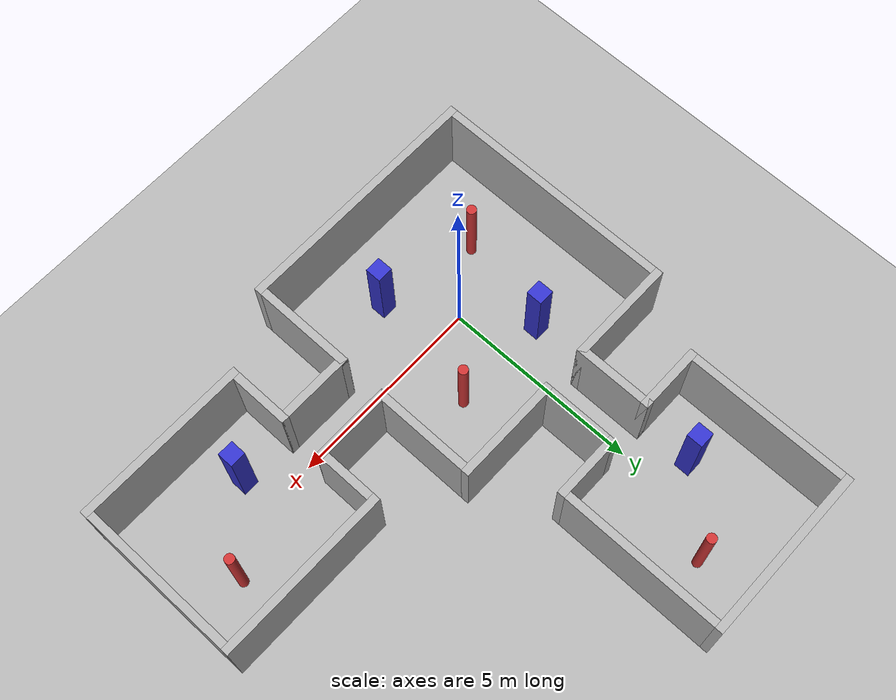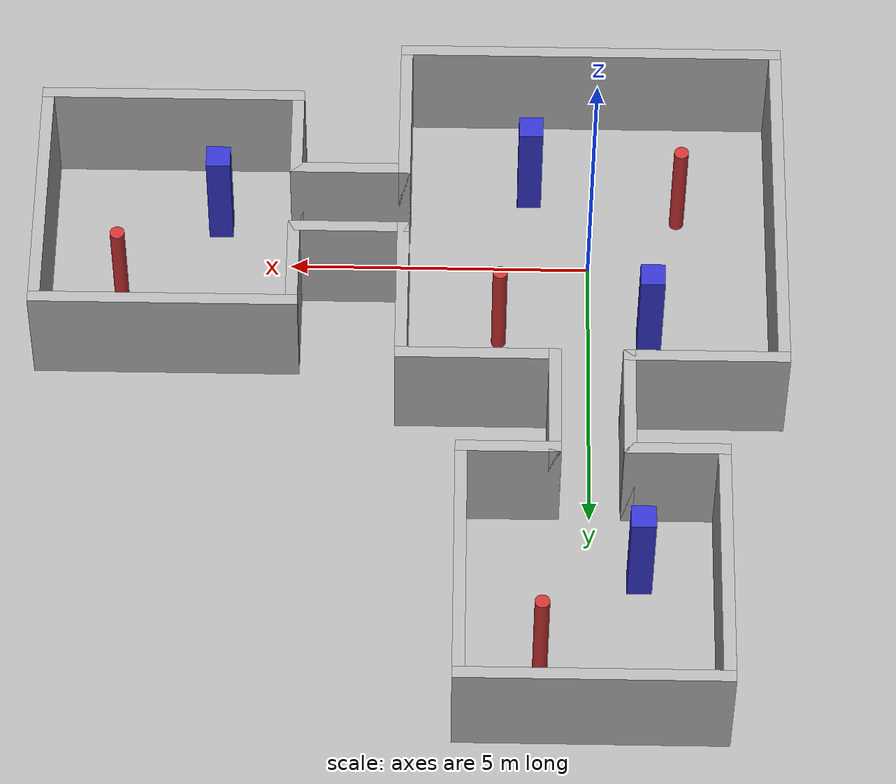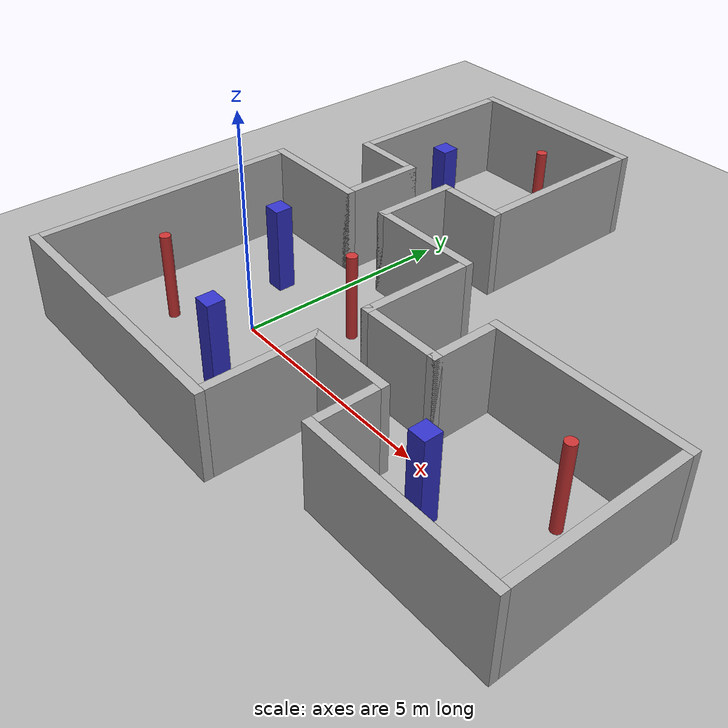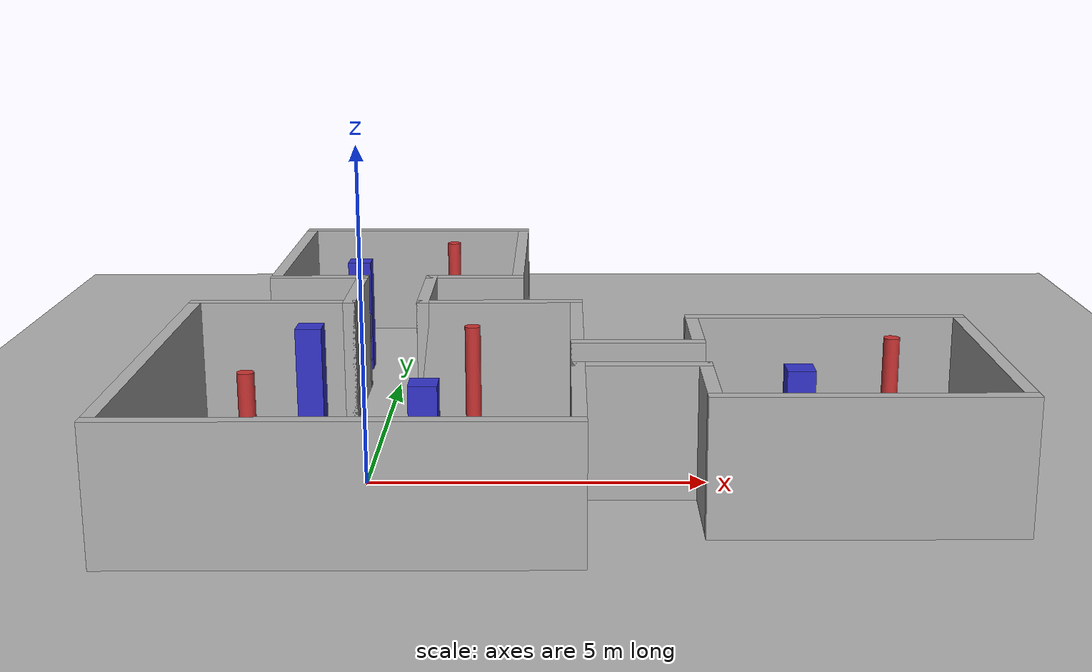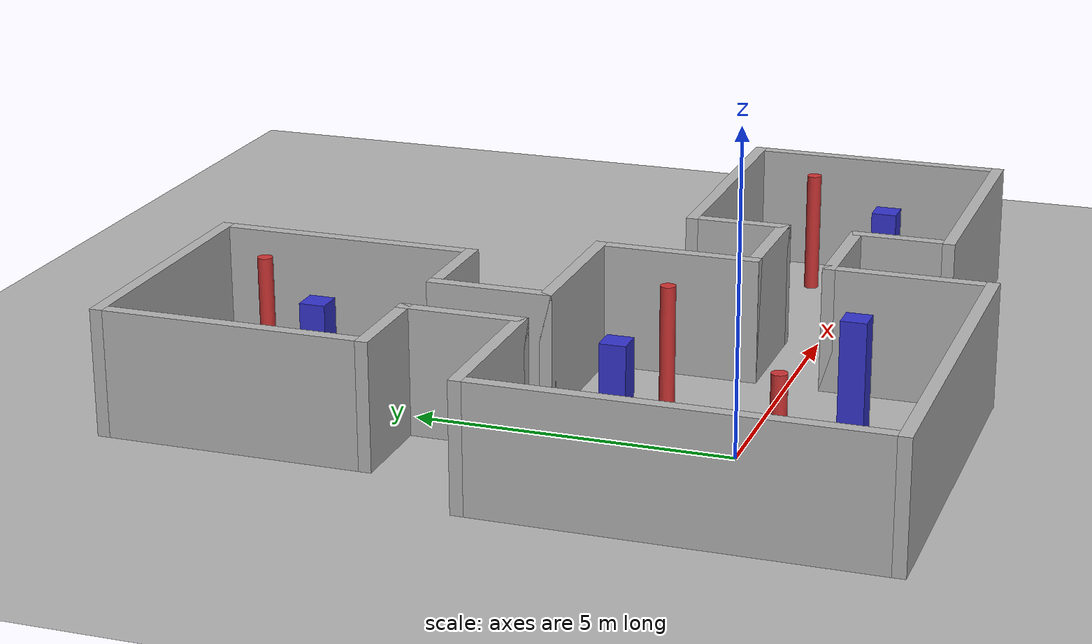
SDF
<?xml version="1.0" ?>
<!-- Copyright (c) 2026 Peppermint Robotics. All rights reserved. -->
<sdf version="1.8">
  <world name="multi_room">

    <!-- ==================== Physics ==================== -->
    <physics name="default_physics" type="ode">
      <max_step_size>0.001</max_step_size>
      <real_time_factor>1.0</real_time_factor>
      <real_time_update_rate>1000</real_time_update_rate>
    </physics>

    <!-- ==================== Required system plugins ==================== -->
    <plugin filename="ignition-gazebo-physics-system"
            name="ignition::gazebo::systems::Physics"/>
    <plugin filename="ignition-gazebo-user-commands-system"
            name="ignition::gazebo::systems::UserCommands"/>
    <plugin filename="ignition-gazebo-scene-broadcaster-system"
            name="ignition::gazebo::systems::SceneBroadcaster"/>
    <plugin filename="ignition-gazebo-sensors-system"
            name="ignition::gazebo::systems::Sensors">
      <render_engine>ogre2</render_engine>
    </plugin>

    <!-- ==================== Lighting ==================== -->
    <light name="sun" type="directional">
      <cast_shadows>true</cast_shadows>
      <pose>0 0 10 0 0 0</pose>
      <diffuse>0.8 0.8 0.8 1</diffuse>
      <specular>0.2 0.2 0.2 1</specular>
      <attenuation>
        <range>1000</range>
        <constant>0.9</constant>
        <linear>0.01</linear>
        <quadratic>0.001</quadratic>
      </attenuation>
      <direction>-0.5 0.1 -0.9</direction>
    </light>

    <!-- ==================== Ground plane ==================== -->
    <model name="ground_plane">
      <static>true</static>
      <link name="link">
        <collision name="collision">
          <geometry>
            <plane><normal>0 0 1</normal><size>25 25</size></plane>
          </geometry>
          <surface>
            <friction><ode><mu>1.0</mu><mu2>1.0</mu2></ode></friction>
          </surface>
        </collision>
        <visual name="visual">
          <geometry>
            <plane><normal>0 0 1</normal><size>25 25</size></plane>
          </geometry>
          <material>
            <ambient>0.7 0.7 0.7 1</ambient>
            <diffuse>0.7 0.7 0.7 1</diffuse>
            <specular>0.1 0.1 0.1 1</specular>
          </material>
        </visual>
      </link>
    </model>

    <model name="wall_main_south">
      <static>true</static><pose>0 -3.1 1.0 0 0 0</pose>
      <link name="link">
        <collision name="collision"><geometry><box><size>6.4 0.2 2.0</size></box></geometry></collision>
        <visual name="visual">
          <geometry><box><size>6.4 0.2 2.0</size></box></geometry>
          <material><ambient>0.7 0.7 0.7 1</ambient><diffuse>0.7 0.7 0.7 1</diffuse><specular>0.1 0.1 0.1 1</specular></material>
        </visual>
      </link>
    </model>

    <!-- N wall — left of hallway opening: x from -3.2 to -0.5  len=2.7  cx=-1.85 -->
    <model name="wall_main_north_left">
      <static>true</static><pose>-1.85 3.1 1.0 0 0 0</pose>
      <link name="link">
        <collision name="collision"><geometry><box><size>2.7 0.2 2.0</size></box></geometry></collision>
        <visual name="visual">
          <geometry><box><size>2.7 0.2 2.0</size></box></geometry>
          <material><ambient>0.7 0.7 0.7 1</ambient><diffuse>0.7 0.7 0.7 1</diffuse><specular>0.1 0.1 0.1 1</specular></material>
        </visual>
      </link>
    </model>

    <!-- N wall — right of hallway opening: x from 0.5 to 3.2  len=2.7  cx=1.85 -->
    <model name="wall_main_north_right">
      <static>true</static><pose>1.85 3.1 1.0 0 0 0</pose>
      <link name="link">
        <collision name="collision"><geometry><box><size>2.7 0.2 2.0</size></box></geometry></collision>
        <visual name="visual">
          <geometry><box><size>2.7 0.2 2.0</size></box></geometry>
          <material><ambient>0.7 0.7 0.7 1</ambient><diffuse>0.7 0.7 0.7 1</diffuse><specular>0.1 0.1 0.1 1</specular></material>
        </visual>
      </link>
    </model>

    <model name="wall_main_west">
      <static>true</static><pose>-3.1 0 1.0 0 0 0</pose>
      <link name="link">
        <collision name="collision"><geometry><box><size>0.2 6.0 2.0</size></box></geometry></collision>
        <visual name="visual">
          <geometry><box><size>0.2 6.0 2.0</size></box></geometry>
          <material><ambient>0.7 0.7 0.7 1</ambient><diffuse>0.7 0.7 0.7 1</diffuse><specular>0.1 0.1 0.1 1</specular></material>
        </visual>
      </link>
    </model>

    <!-- E wall — south of hallway opening: y from -3.0 to -0.5  len=2.5  cy=-1.75 -->
    <model name="wall_main_east_south">
      <static>true</static><pose>3.1 -1.75 1.0 0 0 0</pose>
      <link name="link">
        <collision name="collision"><geometry><box><size>0.2 2.5 2.0</size></box></geometry></collision>
        <visual name="visual">
          <geometry><box><size>0.2 2.5 2.0</size></box></geometry>
          <material><ambient>0.7 0.7 0.7 1</ambient><diffuse>0.7 0.7 0.7 1</diffuse><specular>0.1 0.1 0.1 1</specular></material>
        </visual>
      </link>
    </model>

    <!-- E wall — north of hallway opening: y from 0.5 to 3.0  len=2.5  cy=1.75 -->
    <model name="wall_main_east_north">
      <static>true</static><pose>3.1 1.75 1.0 0 0 0</pose>
      <link name="link">
        <collision name="collision"><geometry><box><size>0.2 2.5 2.0</size></box></geometry></collision>
        <visual name="visual">
          <geometry><box><size>0.2 2.5 2.0</size></box></geometry>
          <material><ambient>0.7 0.7 0.7 1</ambient><diffuse>0.7 0.7 0.7 1</diffuse><specular>0.1 0.1 0.1 1</specular></material>
        </visual>
      </link>
    </model>

    <model name="wall_hallway_north_west">
      <static>true</static><pose>-0.6 4.0 1.0 0 0 0</pose>
      <link name="link">
        <collision name="collision"><geometry><box><size>0.2 2.0 2.0</size></box></geometry></collision>
        <visual name="visual">
          <geometry><box><size>0.2 2.0 2.0</size></box></geometry>
          <material><ambient>0.7 0.7 0.7 1</ambient><diffuse>0.7 0.7 0.7 1</diffuse><specular>0.1 0.1 0.1 1</specular></material>
        </visual>
      </link>
    </model>

    <model name="wall_hallway_north_east">
      <static>true</static><pose>0.6 4.0 1.0 0 0 0</pose>
      <link name="link">
        <collision name="collision"><geometry><box><size>0.2 2.0 2.0</size></box></geometry></collision>
        <visual name="visual">
          <geometry><box><size>0.2 2.0 2.0</size></box></geometry>
          <material><ambient>0.7 0.7 0.7 1</ambient><diffuse>0.7 0.7 0.7 1</diffuse><specular>0.1 0.1 0.1 1</specular></material>
        </visual>
      </link>
    </model>

    <model name="wall_r2_north">
      <static>true</static><pose>0 9.1 1.0 0 0 0</pose>
      <link name="link">
        <collision name="collision"><geometry><box><size>4.4 0.2 2.0</size></box></geometry></collision>
        <visual name="visual">
          <geometry><box><size>4.4 0.2 2.0</size></box></geometry>
          <material><ambient>0.7 0.7 0.7 1</ambient><diffuse>0.7 0.7 0.7 1</diffuse><specular>0.1 0.1 0.1 1</specular></material>
        </visual>
      </link>
    </model>

    <!-- S wall — left of hallway: x from -2.2 to -0.5  len=1.7  cx=-1.35 -->
    <model name="wall_r2_south_left">
      <static>true</static><pose>-1.35 4.9 1.0 0 0 0</pose>
      <link name="link">
        <collision name="collision"><geometry><box><size>1.7 0.2 2.0</size></box></geometry></collision>
        <visual name="visual">
          <geometry><box><size>1.7 0.2 2.0</size></box></geometry>
          <material><ambient>0.7 0.7 0.7 1</ambient><diffuse>0.7 0.7 0.7 1</diffuse><specular>0.1 0.1 0.1 1</specular></material>
        </visual>
      </link>
    </model>

    <!-- S wall — right of hallway: x from 0.5 to 2.2  len=1.7  cx=1.35 -->
    <model name="wall_r2_south_right">
      <static>true</static><pose>1.35 4.9 1.0 0 0 0</pose>
      <link name="link">
        <collision name="collision"><geometry><box><size>1.7 0.2 2.0</size></box></geometry></collision>
        <visual name="visual">
          <geometry><box><size>1.7 0.2 2.0</size></box></geometry>
          <material><ambient>0.7 0.7 0.7 1</ambient><diffuse>0.7 0.7 0.7 1</diffuse><specular>0.1 0.1 0.1 1</specular></material>
        </visual>
      </link>
    </model>

    <model name="wall_r2_west">
      <static>true</static><pose>-2.1 7.0 1.0 0 0 0</pose>
      <link name="link">
        <collision name="collision"><geometry><box><size>0.2 4.0 2.0</size></box></geometry></collision>
        <visual name="visual">
          <geometry><box><size>0.2 4.0 2.0</size></box></geometry>
          <material><ambient>0.7 0.7 0.7 1</ambient><diffuse>0.7 0.7 0.7 1</diffuse><specular>0.1 0.1 0.1 1</specular></material>
        </visual>
      </link>
    </model>

    <model name="wall_r2_east">
      <static>true</static><pose>2.1 7.0 1.0 0 0 0</pose>
      <link name="link">
        <collision name="collision"><geometry><box><size>0.2 4.0 2.0</size></box></geometry></collision>
        <visual name="visual">
          <geometry><box><size>0.2 4.0 2.0</size></box></geometry>
          <material><ambient>0.7 0.7 0.7 1</ambient><diffuse>0.7 0.7 0.7 1</diffuse><specular>0.1 0.1 0.1 1</specular></material>
        </visual>
      </link>
    </model>

    <model name="wall_hallway_east_south">
      <static>true</static><pose>4.0 -0.6 1.0 0 0 0</pose>
      <link name="link">
        <collision name="collision"><geometry><box><size>2.0 0.2 2.0</size></box></geometry></collision>
        <visual name="visual">
          <geometry><box><size>2.0 0.2 2.0</size></box></geometry>
          <material><ambient>0.7 0.7 0.7 1</ambient><diffuse>0.7 0.7 0.7 1</diffuse><specular>0.1 0.1 0.1 1</specular></material>
        </visual>
      </link>
    </model>

    <model name="wall_hallway_east_north">
      <static>true</static><pose>4.0 0.6 1.0 0 0 0</pose>
      <link name="link">
        <collision name="collision"><geometry><box><size>2.0 0.2 2.0</size></box></geometry></collision>
        <visual name="visual">
          <geometry><box><size>2.0 0.2 2.0</size></box></geometry>
          <material><ambient>0.7 0.7 0.7 1</ambient><diffuse>0.7 0.7 0.7 1</diffuse><specular>0.1 0.1 0.1 1</specular></material>
        </visual>
      </link>
    </model>

    <!-- N/S walls cover corners: outer x range 4.8→9.2 = 4.4 m, cx=7.0 -->
    <model name="wall_r3_north">
      <static>true</static><pose>7.0 2.1 1.0 0 0 0</pose>
      <link name="link">
        <collision name="collision"><geometry><box><size>4.4 0.2 2.0</size></box></geometry></collision>
        <visual name="visual">
          <geometry><box><size>4.4 0.2 2.0</size></box></geometry>
          <material><ambient>0.7 0.7 0.7 1</ambient><diffuse>0.7 0.7 0.7 1</diffuse><specular>0.1 0.1 0.1 1</specular></material>
        </visual>
      </link>
    </model>

    <model name="wall_r3_south">
      <static>true</static><pose>7.0 -2.1 1.0 0 0 0</pose>
      <link name="link">
        <collision name="collision"><geometry><box><size>4.4 0.2 2.0</size></box></geometry></collision>
        <visual name="visual">
          <geometry><box><size>4.4 0.2 2.0</size></box></geometry>
          <material><ambient>0.7 0.7 0.7 1</ambient><diffuse>0.7 0.7 0.7 1</diffuse><specular>0.1 0.1 0.1 1</specular></material>
        </visual>
      </link>
    </model>

    <model name="wall_r3_east">
      <static>true</static><pose>9.1 0 1.0 0 0 0</pose>
      <link name="link">
        <collision name="collision"><geometry><box><size>0.2 4.0 2.0</size></box></geometry></collision>
        <visual name="visual">
          <geometry><box><size>0.2 4.0 2.0</size></box></geometry>
          <material><ambient>0.7 0.7 0.7 1</ambient><diffuse>0.7 0.7 0.7 1</diffuse><specular>0.1 0.1 0.1 1</specular></material>
        </visual>
      </link>
    </model>

    <!-- W wall — south of hallway: y from -2.0 to -0.5  len=1.5  cy=-1.25 -->
    <model name="wall_r3_west_south">
      <static>true</static><pose>4.9 -1.25 1.0 0 0 0</pose>
      <link name="link">
        <collision name="collision"><geometry><box><size>0.2 1.5 2.0</size></box></geometry></collision>
        <visual name="visual">
          <geometry><box><size>0.2 1.5 2.0</size></box></geometry>
          <material><ambient>0.7 0.7 0.7 1</ambient><diffuse>0.7 0.7 0.7 1</diffuse><specular>0.1 0.1 0.1 1</specular></material>
        </visual>
      </link>
    </model>

    <!-- W wall — north of hallway: y from 0.5 to 2.0  len=1.5  cy=1.25 -->
    <model name="wall_r3_west_north">
      <static>true</static><pose>4.9 1.25 1.0 0 0 0</pose>
      <link name="link">
        <collision name="collision"><geometry><box><size>0.2 1.5 2.0</size></box></geometry></collision>
        <visual name="visual">
          <geometry><box><size>0.2 1.5 2.0</size></box></geometry>
          <material><ambient>0.7 0.7 0.7 1</ambient><diffuse>0.7 0.7 0.7 1</diffuse><specular>0.1 0.1 0.1 1</specular></material>
        </visual>
      </link>
    </model>

    <!-- ================================================================
         OBSTACLES
    ================================================================ -->

    <!-- === Main Room === -->
    <model name="obs_main_cyl_1">
      <static>true</static><pose>1.5 1.5 1.0 0 0 0</pose>
      <link name="link">
        <collision name="collision"><geometry><cylinder><radius>0.12</radius><length>2.0</length></cylinder></geometry></collision>
        <visual name="visual">
          <geometry><cylinder><radius>0.12</radius><length>2.0</length></cylinder></geometry>
          <material><ambient>0.8 0.2 0.2 1</ambient><diffuse>0.8 0.2 0.2 1</diffuse><specular>0.2 0.1 0.1 1</specular></material>
        </visual>
      </link>
    </model>

    <model name="obs_main_cyl_2">
      <static>true</static><pose>-1.5 -1.0 1.0 0 0 0</pose>
      <link name="link">
        <collision name="collision"><geometry><cylinder><radius>0.12</radius><length>2.0</length></cylinder></geometry></collision>
        <visual name="visual">
          <geometry><cylinder><radius>0.12</radius><length>2.0</length></cylinder></geometry>
          <material><ambient>0.8 0.2 0.2 1</ambient><diffuse>0.8 0.2 0.2 1</diffuse><specular>0.2 0.1 0.1 1</specular></material>
        </visual>
      </link>
    </model>

    <model name="obs_main_box_1">
      <static>true</static><pose>1.0 -1.5 1.0 0 0 0</pose>
      <link name="link">
        <collision name="collision"><geometry><box><size>0.4 0.4 2.0</size></box></geometry></collision>
        <visual name="visual">
          <geometry><box><size>0.4 0.4 2.0</size></box></geometry>
          <material><ambient>0.2 0.2 0.8 1</ambient><diffuse>0.2 0.2 0.8 1</diffuse><specular>0.1 0.1 0.2 1</specular></material>
        </visual>
      </link>
    </model>

    <model name="obs_main_box_2">
      <static>true</static><pose>-1.0 1.5 1.0 0 0 0</pose>
      <link name="link">
        <collision name="collision"><geometry><box><size>0.4 0.4 2.0</size></box></geometry></collision>
        <visual name="visual">
          <geometry><box><size>0.4 0.4 2.0</size></box></geometry>
          <material><ambient>0.2 0.2 0.8 1</ambient><diffuse>0.2 0.2 0.8 1</diffuse><specular>0.1 0.1 0.2 1</specular></material>
        </visual>
      </link>
    </model>

    <!-- === Room 2 (centre 0, 7) — relative offsets applied === -->
    <model name="obs_r2_cyl">
      <static>true</static><pose>0.8 7.8 1.0 0 0 0</pose>
      <link name="link">
        <collision name="collision"><geometry><cylinder><radius>0.12</radius><length>2.0</length></cylinder></geometry></collision>
        <visual name="visual">
          <geometry><cylinder><radius>0.12</radius><length>2.0</length></cylinder></geometry>
          <material><ambient>0.8 0.2 0.2 1</ambient><diffuse>0.8 0.2 0.2 1</diffuse><specular>0.2 0.1 0.1 1</specular></material>
        </visual>
      </link>
    </model>

    <model name="obs_r2_box">
      <static>true</static><pose>-0.8 6.2 1.0 0 0 0</pose>
      <link name="link">
        <collision name="collision"><geometry><box><size>0.4 0.4 2.0</size></box></geometry></collision>
        <visual name="visual">
          <geometry><box><size>0.4 0.4 2.0</size></box></geometry>
          <material><ambient>0.2 0.2 0.8 1</ambient><diffuse>0.2 0.2 0.8 1</diffuse><specular>0.1 0.1 0.2 1</specular></material>
        </visual>
      </link>
    </model>

    <!-- === Room 3 (centre 7, 0) — relative offsets applied === -->
    <model name="obs_r3_cyl">
      <static>true</static><pose>7.8 0.8 1.0 0 0 0</pose>
      <link name="link">
        <collision name="collision"><geometry><cylinder><radius>0.12</radius><length>2.0</length></cylinder></geometry></collision>
        <visual name="visual">
          <geometry><cylinder><radius>0.12</radius><length>2.0</length></cylinder></geometry>
          <material><ambient>0.8 0.2 0.2 1</ambient><diffuse>0.8 0.2 0.2 1</diffuse><specular>0.2 0.1 0.1 1</specular></material>
        </visual>
      </link>
    </model>

    <model name="obs_r3_box">
      <static>true</static><pose>6.2 -0.8 1.0 0 0 0</pose>
      <link name="link">
        <collision name="collision"><geometry><box><size>0.4 0.4 2.0</size></box></geometry></collision>
        <visual name="visual">
          <geometry><box><size>0.4 0.4 2.0</size></box></geometry>
          <material><ambient>0.2 0.2 0.8 1</ambient><diffuse>0.2 0.2 0.8 1</diffuse><specular>0.1 0.1 0.2 1</specular></material>
        </visual>
      </link>
    </model>

  </world>
</sdf>
